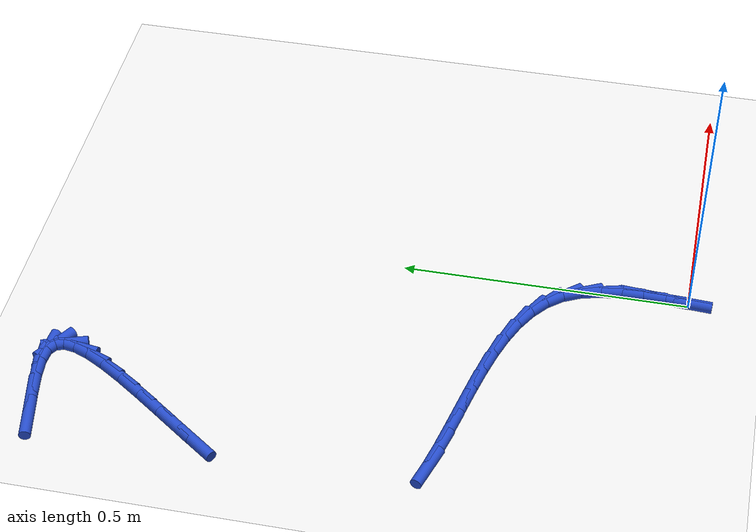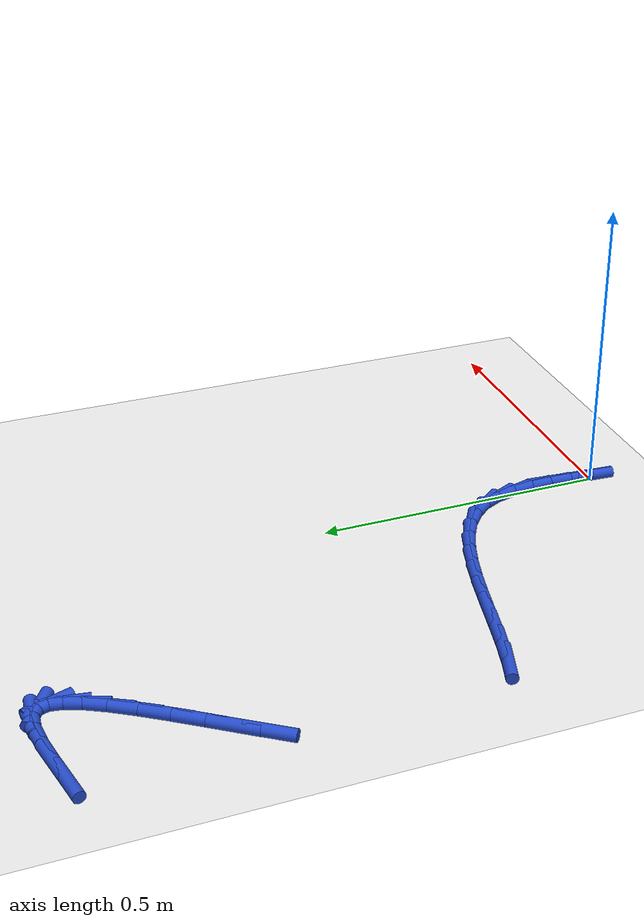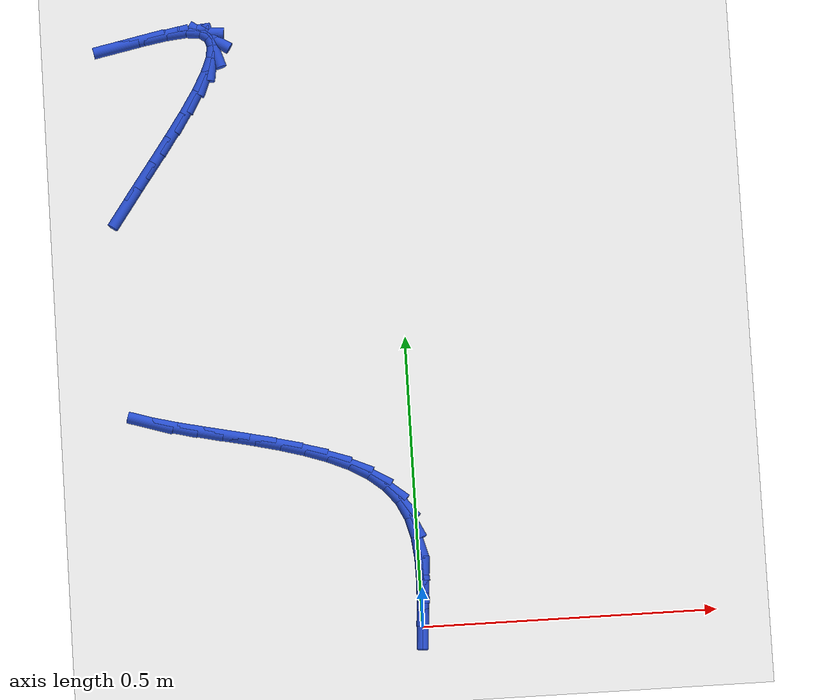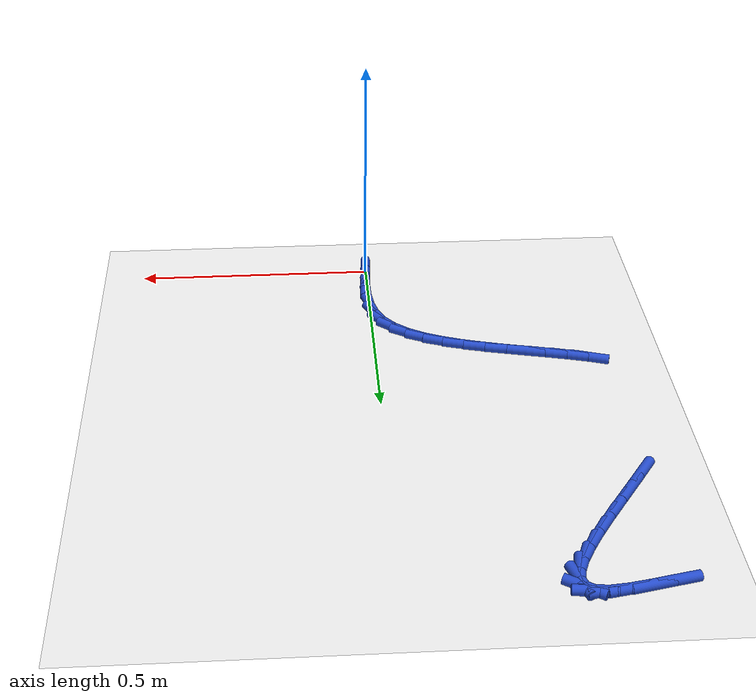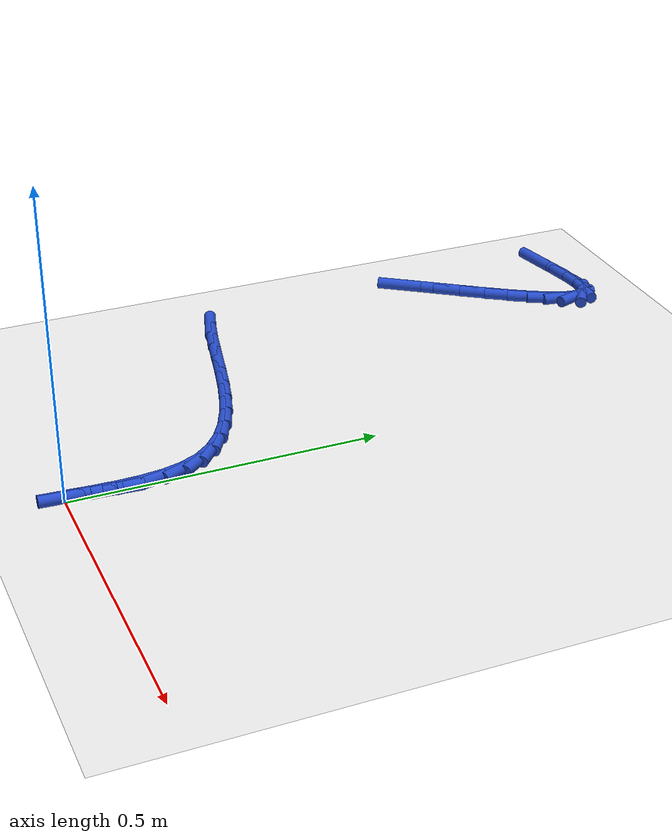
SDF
<sdf version="1.6">
 <world name="default">
  <model name="ground_plane">
   <static>1</static>
   <link name="link">
    <collision name="collision">
     <geometry><plane><normal>0 0 1</normal><size>100 100</size></plane></geometry>
     <surface><friction><ode><mu>100</mu><mu2>50</mu2></ode></friction></surface>
    </collision>
    <visual name="visual">
     <cast_shadows>0</cast_shadows>
     <geometry><plane><normal>0 0 1</normal><size>100 100</size></plane></geometry>
     <material>
      <script><uri>file://media/materials/scripts/gazebo.material</uri><name>Gazebo/WhiteGlow</name></script>
     </material>
    </visual>
   </link>
  </model>
  <model name="line">
   <link name="link_0">
    <pose>2.42861286636753e-17 -9.71445146547012e-17 0.01 0 1.57 1.5118011852398148</pose>
    <collision name="collision">
     <geometry><cylinder><radius>0.01</radius><length>0.08</length></cylinder></geometry>
    </collision>
    <visual name="visual">
     <material>
      <script><name>Gazebo/Blue</name><uri>file://media/materials/scripts/gazebo.material</uri></script>
     </material>
     <geometry><cylinder><radius>0.01</radius><length>0.08</length></cylinder></geometry>
    </visual>
   </link>
   <link name="link_1">
    <pose>0.002303739772416932 0.03900433875733539 0.01 0 1.57 1.5351586536880117</pose>
    <collision name="collision">
     <geometry><cylinder><radius>0.01</radius><length>0.08</length></cylinder></geometry>
    </collision>
    <visual name="visual">
     <material>
      <script><name>Gazebo/Blue</name><uri>file://media/materials/scripts/gazebo.material</uri></script>
     </material>
     <geometry><cylinder><radius>0.01</radius><length>0.08</length></cylinder></geometry>
    </visual>
   </link>
   <link name="link_2">
    <pose>0.003697740250314615 0.07810370073165415 0.01 0 1.57 -1.5509076901935297</pose>
    <collision name="collision">
     <geometry><cylinder><radius>0.01</radius><length>0.08</length></cylinder></geometry>
    </collision>
    <visual name="visual">
     <material>
      <script><name>Gazebo/Blue</name><uri>file://media/materials/scripts/gazebo.material</uri></script>
     </material>
     <geometry><cylinder><radius>0.01</radius><length>0.08</length></cylinder></geometry>
    </visual>
   </link>
   <link name="link_3">
    <pose>0.002936328509903917 0.1163824102725819 0.01 0 1.57 -1.4573764426155094</pose>
    <collision name="collision">
     <geometry><cylinder><radius>0.01</radius><length>0.08</length></cylinder></geometry>
    </collision>
    <visual name="visual">
     <material>
      <script><name>Gazebo/Blue</name><uri>file://media/materials/scripts/gazebo.material</uri></script>
     </material>
     <geometry><cylinder><radius>0.01</radius><length>0.08</length></cylinder></geometry>
    </visual>
   </link>
   <link name="link_4">
    <pose>-0.001226168372604317 0.15292479172974435 0.01 0 1.57 -1.3164902696506535</pose>
    <collision name="collision">
     <geometry><cylinder><radius>0.01</radius><length>0.08</length></cylinder></geometry>
    </collision>
    <visual name="visual">
     <material>
      <script><name>Gazebo/Blue</name><uri>file://media/materials/scripts/gazebo.material</uri></script>
     </material>
     <geometry><cylinder><radius>0.01</radius><length>0.08</length></cylinder></geometry>
    </visual>
   </link>
   <link name="link_5">
    <pose>-0.010035423320999243 0.18681516945276722 0.01 0 1.57 -1.1193549788950194</pose>
    <collision name="collision">
     <geometry><cylinder><radius>0.01</radius><length>0.08</length></cylinder></geometry>
    </collision>
    <visual name="visual">
     <material>
      <script><name>Gazebo/Blue</name><uri>file://media/materials/scripts/gazebo.material</uri></script>
     </material>
     <geometry><cylinder><radius>0.01</radius><length>0.08</length></cylinder></geometry>
    </visual>
   </link>
   <link name="link_6">
    <pose>-0.024736949133175437 0.21713797354723255 0.01 0 1.57 -0.884915147896317</pose>
    <collision name="collision">
     <geometry><cylinder><radius>0.01</radius><length>0.08</length></cylinder></geometry>
    </collision>
    <visual name="visual">
     <material>
      <script><name>Gazebo/Blue</name><uri>file://media/materials/scripts/gazebo.material</uri></script>
     </material>
     <geometry><cylinder><radius>0.01</radius><length>0.08</length></cylinder></geometry>
    </visual>
   </link>
   <link name="link_7">
    <pose>-0.04612756798879818 0.24327397410493337 0.01 0 1.57 -0.6817286199915633</pose>
    <collision name="collision">
     <geometry><cylinder><radius>0.01</radius><length>0.08</length></cylinder></geometry>
    </collision>
    <visual name="visual">
     <material>
      <script><name>Gazebo/Blue</name><uri>file://media/materials/scripts/gazebo.material</uri></script>
     </material>
     <geometry><cylinder><radius>0.01</radius><length>0.08</length></cylinder></geometry>
    </visual>
   </link>
   <link name="link_8">
    <pose>-0.07357470376039342 0.2655479945528973 0.01 0 1.57 -0.5261334668051496</pose>
    <collision name="collision">
     <geometry><cylinder><radius>0.01</radius><length>0.08</length></cylinder></geometry>
    </collision>
    <visual name="visual">
     <material>
      <script><name>Gazebo/Blue</name><uri>file://media/materials/scripts/gazebo.material</uri></script>
     </material>
     <geometry><cylinder><radius>0.01</radius><length>0.08</length></cylinder></geometry>
    </visual>
   </link>
   <link name="link_9">
    <pose>-0.1061617666526671 0.2844724365802909 0.01 0 1.57 -0.4120162486994835</pose>
    <collision name="collision">
     <geometry><cylinder><radius>0.01</radius><length>0.08</length></cylinder></geometry>
    </collision>
    <visual name="visual">
     <material>
      <script><name>Gazebo/Blue</name><uri>file://media/materials/scripts/gazebo.material</uri></script>
     </material>
     <geometry><cylinder><radius>0.01</radius><length>0.08</length></cylinder></geometry>
    </visual>
   </link>
   <link name="link_10">
    <pose>-0.14297216687032516 0.30055970187628095 0.01 0 1.57 -0.33047666717313223</pose>
    <collision name="collision">
     <geometry><cylinder><radius>0.01</radius><length>0.08</length></cylinder></geometry>
    </collision>
    <visual name="visual">
     <material>
      <script><name>Gazebo/Blue</name><uri>file://media/materials/scripts/gazebo.material</uri></script>
     </material>
     <geometry><cylinder><radius>0.01</radius><length>0.08</length></cylinder></geometry>
    </visual>
   </link>
   <link name="link_11">
    <pose>-0.18308931461807346 0.31432219213003376 0.01 0 1.57 -0.27405707491371806</pose>
    <collision name="collision">
     <geometry><cylinder><radius>0.01</radius><length>0.08</length></cylinder></geometry>
    </collision>
    <visual name="visual">
     <material>
      <script><name>Gazebo/Blue</name><uri>file://media/materials/scripts/gazebo.material</uri></script>
     </material>
     <geometry><cylinder><radius>0.01</radius><length>0.08</length></cylinder></geometry>
    </visual>
   </link>
   <link name="link_12">
    <pose>-0.22559662010061804 0.3262723090307163 0.01 0 1.57 -0.23758068717680417</pose>
    <collision name="collision">
     <geometry><cylinder><radius>0.01</radius><length>0.08</length></cylinder></geometry>
    </collision>
    <visual name="visual">
     <material>
      <script><name>Gazebo/Blue</name><uri>file://media/materials/scripts/gazebo.material</uri></script>
     </material>
     <geometry><cylinder><radius>0.01</radius><length>0.08</length></cylinder></geometry>
    </visual>
   </link>
   <link name="link_13">
    <pose>-0.2695774935226647 0.336922454267495 0.01 0 1.57 -0.21792583812303976</pose>
    <collision name="collision">
     <geometry><cylinder><radius>0.01</radius><length>0.08</length></cylinder></geometry>
    </collision>
    <visual name="visual">
     <material>
      <script><name>Gazebo/Blue</name><uri>file://media/materials/scripts/gazebo.material</uri></script>
     </material>
     <geometry><cylinder><radius>0.01</radius><length>0.08</length></cylinder></geometry>
    </visual>
   </link>
   <link name="link_14">
    <pose>-0.3141153450889196 0.3467850295295366 0.01 0 1.57 -0.21370276437420313</pose>
    <collision name="collision">
     <geometry><cylinder><radius>0.01</radius><length>0.08</length></cylinder></geometry>
    </collision>
    <visual name="visual">
     <material>
      <script><name>Gazebo/Blue</name><uri>file://media/materials/scripts/gazebo.material</uri></script>
     </material>
     <geometry><cylinder><radius>0.01</radius><length>0.08</length></cylinder></geometry>
    </visual>
   </link>
   <link name="link_15">
    <pose>-0.35829358500408826 0.35637243650600753 0.01 0 1.57 -0.22512005235868032</pose>
    <collision name="collision">
     <geometry><cylinder><radius>0.01</radius><length>0.08</length></cylinder></geometry>
    </collision>
    <visual name="visual">
     <material>
      <script><name>Gazebo/Blue</name><uri>file://media/materials/scripts/gazebo.material</uri></script>
     </material>
     <geometry><cylinder><radius>0.01</radius><length>0.08</length></cylinder></geometry>
    </visual>
   </link>
   <link name="link_16">
    <pose>-0.4011956234728772 0.36619707688607467 0.01 0 1.57 -0.25413499040041554</pose>
    <collision name="collision">
     <geometry><cylinder><radius>0.01</radius><length>0.08</length></cylinder></geometry>
    </collision>
    <visual name="visual">
     <material>
      <script><name>Gazebo/Blue</name><uri>file://media/materials/scripts/gazebo.material</uri></script>
     </material>
     <geometry><cylinder><radius>0.01</radius><length>0.08</length></cylinder></geometry>
    </visual>
   </link>
   <link name="link_17">
    <pose>-0.4419048706999916 0.3767713523589043 0.01 0 1.57 -0.3049758280346327</pose>
    <collision name="collision">
     <geometry><cylinder><radius>0.01</radius><length>0.08</length></cylinder></geometry>
    </collision>
    <visual name="visual">
     <material>
      <script><name>Gazebo/Blue</name><uri>file://media/materials/scripts/gazebo.material</uri></script>
     </material>
     <geometry><cylinder><radius>0.01</radius><length>0.08</length></cylinder></geometry>
    </visual>
   </link>
   <link name="link_30">
    <pose>-0.46583013350320435 0.751449653230421 0.01 0 1.57 0.9550896312616892</pose>
    <collision name="collision">
     <geometry><cylinder><radius>0.01</radius><length>0.08</length></cylinder></geometry>
    </collision>
    <visual name="visual">
     <material>
      <script><name>Gazebo/Blue</name><uri>file://media/materials/scripts/gazebo.material</uri></script>
     </material>
     <geometry><cylinder><radius>0.01</radius><length>0.08</length></cylinder></geometry>
    </visual>
   </link>
   <link name="link_31">
    <pose>-0.4357633711025099 0.7939500086838602 0.01 0 1.57 0.9498553203666651</pose>
    <collision name="collision">
     <geometry><cylinder><radius>0.01</radius><length>0.08</length></cylinder></geometry>
    </collision>
    <visual name="visual">
     <material>
      <script><name>Gazebo/Blue</name><uri>file://media/materials/scripts/gazebo.material</uri></script>
     </material>
     <geometry><cylinder><radius>0.01</radius><length>0.08</length></cylinder></geometry>
    </visual>
   </link>
   <link name="link_32">
    <pose>-0.4060422923881338 0.8354987416230766 0.01 0 1.57 0.9554066238966101</pose>
    <collision name="collision">
     <geometry><cylinder><radius>0.01</radius><length>0.08</length></cylinder></geometry>
    </collision>
    <visual name="visual">
     <material>
      <script><name>Gazebo/Blue</name><uri>file://media/materials/scripts/gazebo.material</uri></script>
     </material>
     <geometry><cylinder><radius>0.01</radius><length>0.08</length></cylinder></geometry>
    </visual>
   </link>
   <link name="link_33">
    <pose>-0.3778239803632683 0.8754130815988024 0.01 0 1.57 0.9737582310132793</pose>
    <collision name="collision">
     <geometry><cylinder><radius>0.01</radius><length>0.08</length></cylinder></geometry>
    </collision>
    <visual name="visual">
     <material>
      <script><name>Gazebo/Blue</name><uri>file://media/materials/scripts/gazebo.material</uri></script>
     </material>
     <geometry><cylinder><radius>0.01</radius><length>0.08</length></cylinder></geometry>
    </visual>
   </link>
   <link name="link_34">
    <pose>-0.35226551803110623 0.9130102581617702 0.01 0 1.57 1.0097429075592725</pose>
    <collision name="collision">
     <geometry><cylinder><radius>0.01</radius><length>0.08</length></cylinder></geometry>
    </collision>
    <visual name="visual">
     <material>
      <script><name>Gazebo/Blue</name><uri>file://media/materials/scripts/gazebo.material</uri></script>
     </material>
     <geometry><cylinder><radius>0.01</radius><length>0.08</length></cylinder></geometry>
    </visual>
   </link>
   <link name="link_35">
    <pose>-0.3305239883948398 0.947607500862713 0.01 0 1.57 1.0738200567240912</pose>
    <collision name="collision">
     <geometry><cylinder><radius>0.01</radius><length>0.08</length></cylinder></geometry>
    </collision>
    <visual name="visual">
     <material>
      <script><name>Gazebo/Blue</name><uri>file://media/materials/scripts/gazebo.material</uri></script>
     </material>
     <geometry><cylinder><radius>0.01</radius><length>0.08</length></cylinder></geometry>
    </visual>
   </link>
   <link name="link_36">
    <pose>-0.3137564744576612 0.9785220392523635 0.01 0 1.57 1.189744891137479</pose>
    <collision name="collision">
     <geometry><cylinder><radius>0.01</radius><length>0.08</length></cylinder></geometry>
    </collision>
    <visual name="visual">
     <material>
      <script><name>Gazebo/Blue</name><uri>file://media/materials/scripts/gazebo.material</uri></script>
     </material>
     <geometry><cylinder><radius>0.01</radius><length>0.08</length></cylinder></geometry>
    </visual>
   </link>
   <link name="link_37">
    <pose>-0.3031200592227631 1.005071102881454 0.01 0 1.57 1.4163112702088512</pose>
    <collision name="collision">
     <geometry><cylinder><radius>0.01</radius><length>0.08</length></cylinder></geometry>
    </collision>
    <visual name="visual">
     <material>
      <script><name>Gazebo/Blue</name><uri>file://media/materials/scripts/gazebo.material</uri></script>
     </material>
     <geometry><cylinder><radius>0.01</radius><length>0.08</length></cylinder></geometry>
    </visual>
   </link>
   <link name="link_38">
    <pose>-0.2997718256933378 1.0265719213007176 0.01 0 1.57 -1.258180067983915</pose>
    <collision name="collision">
     <geometry><cylinder><radius>0.01</radius><length>0.08</length></cylinder></geometry>
    </collision>
    <visual name="visual">
     <material>
      <script><name>Gazebo/Blue</name><uri>file://media/materials/scripts/gazebo.material</uri></script>
     </material>
     <geometry><cylinder><radius>0.01</radius><length>0.08</length></cylinder></geometry>
    </visual>
   </link>
   <link name="link_39">
    <pose>-0.3048688568725777 1.0423417240608868 0.01 0 1.57 -0.566819588395032</pose>
    <collision name="collision">
     <geometry><cylinder><radius>0.01</radius><length>0.08</length></cylinder></geometry>
    </collision>
    <visual name="visual">
     <material>
      <script><name>Gazebo/Blue</name><uri>file://media/materials/scripts/gazebo.material</uri></script>
     </material>
     <geometry><cylinder><radius>0.01</radius><length>0.08</length></cylinder></geometry>
    </visual>
   </link>
   <link name="link_40">
    <pose>-0.31956823576367516 1.0516977407126944 0.01 0 1.57 -0.09737909518424188</pose>
    <collision name="collision">
     <geometry><cylinder><radius>0.01</radius><length>0.08</length></cylinder></geometry>
    </collision>
    <visual name="visual">
     <material>
      <script><name>Gazebo/Blue</name><uri>file://media/materials/scripts/gazebo.material</uri></script>
     </material>
     <geometry><cylinder><radius>0.01</radius><length>0.08</length></cylinder></geometry>
    </visual>
   </link>
   <link name="link_41">
    <pose>-0.3447503156409448 1.0541577295551623 0.01 0 1.57 0.0969121332372446</pose>
    <collision name="collision">
     <geometry><cylinder><radius>0.01</radius><length>0.08</length></cylinder></geometry>
    </collision>
    <visual name="visual">
     <material>
      <script><name>Gazebo/Blue</name><uri>file://media/materials/scripts/gazebo.material</uri></script>
     </material>
     <geometry><cylinder><radius>0.01</radius><length>0.08</length></cylinder></geometry>
    </visual>
   </link>
   <link name="link_42">
    <pose>-0.3791191048341386 1.0508165101208444 0.01 0 1.57 0.17528033534081366</pose>
    <collision name="collision">
     <geometry><cylinder><radius>0.01</radius><length>0.08</length></cylinder></geometry>
    </collision>
    <visual name="visual">
     <material>
      <script><name>Gazebo/Blue</name><uri>file://media/materials/scripts/gazebo.material</uri></script>
     </material>
     <geometry><cylinder><radius>0.01</radius><length>0.08</length></cylinder></geometry>
    </visual>
   </link>
   <link name="link_43">
    <pose>-0.4203493797817771 1.0435147220017615 0.01 0 1.57 0.20296171793397277</pose>
    <collision name="collision">
     <geometry><cylinder><radius>0.01</radius><length>0.08</length></cylinder></geometry>
    </collision>
    <visual name="visual">
     <material>
      <script><name>Gazebo/Blue</name><uri>file://media/materials/scripts/gazebo.material</uri></script>
     </material>
     <geometry><cylinder><radius>0.01</radius><length>0.08</length></cylinder></geometry>
    </visual>
   </link>
   <link name="link_44">
    <pose>-0.4661097912672229 1.0340974436695838 0.01 0 1.57 0.19931653104934366</pose>
    <collision name="collision">
     <geometry><cylinder><radius>0.01</radius><length>0.08</length></cylinder></geometry>
    </collision>
    <visual name="visual">
     <material>
      <script><name>Gazebo/Blue</name><uri>file://media/materials/scripts/gazebo.material</uri></script>
     </material>
     <geometry><cylinder><radius>0.01</radius><length>0.08</length></cylinder></geometry>
    </visual>
   </link>
   <link name="link_290">
    <pose>9.974659986866641e-18 -3.95516952522712e-16 0.01 0 1.57 1.5048956440051793</pose>
    <collision name="collision">
     <geometry><cylinder><radius>0.01</radius><length>0.08</length></cylinder></geometry>
    </collision>
    <visual name="visual">
     <material>
      <script><name>Gazebo/Blue</name><uri>file://media/materials/scripts/gazebo.material</uri></script>
     </material>
     <geometry><cylinder><radius>0.01</radius><length>0.08</length></cylinder></geometry>
    </visual>
   </link>
   <link name="link_291">
    <pose>0.002585400309179459 0.03917495850070636 0.01 0 1.57 1.4874624628157014</pose>
    <collision name="collision">
     <geometry><cylinder><radius>0.01</radius><length>0.08</length></cylinder></geometry>
    </collision>
    <visual name="visual">
     <material>
      <script><name>Gazebo/Blue</name><uri>file://media/materials/scripts/gazebo.material</uri></script>
     </material>
     <geometry><cylinder><radius>0.01</radius><length>0.08</length></cylinder></geometry>
    </visual>
   </link>
   <link name="link_292">
    <pose>0.005951024544415663 0.07946865867863373 0.01 0 1.57 1.4960506611287478</pose>
    <collision name="collision">
     <geometry><cylinder><radius>0.01</radius><length>0.08</length></cylinder></geometry>
    </collision>
    <visual name="visual">
     <material>
      <script><name>Gazebo/Blue</name><uri>file://media/materials/scripts/gazebo.material</uri></script>
     </material>
     <geometry><cylinder><radius>0.01</radius><length>0.08</length></cylinder></geometry>
    </visual>
   </link>
  </model>
 </world>
</sdf>
